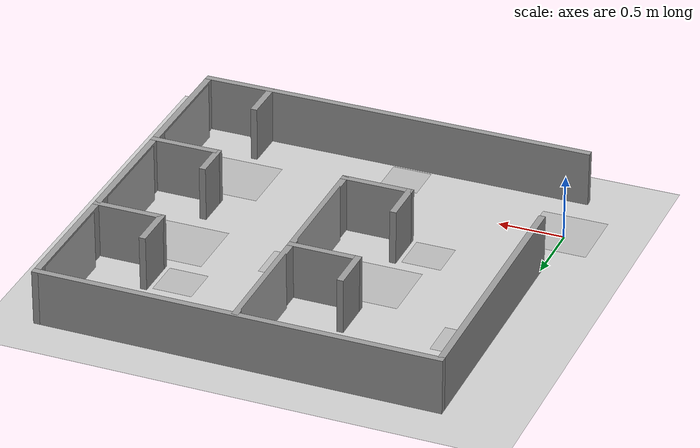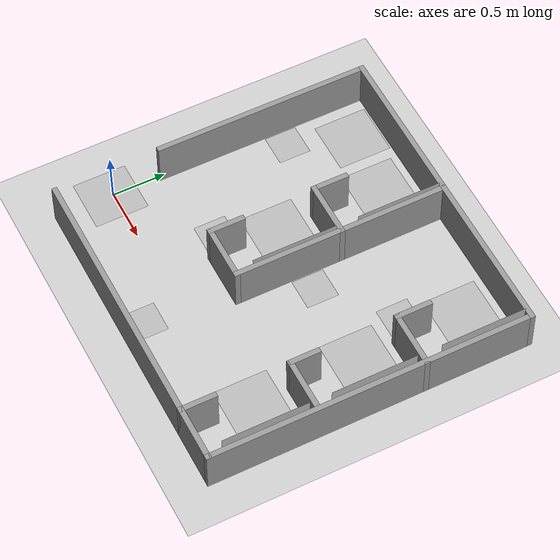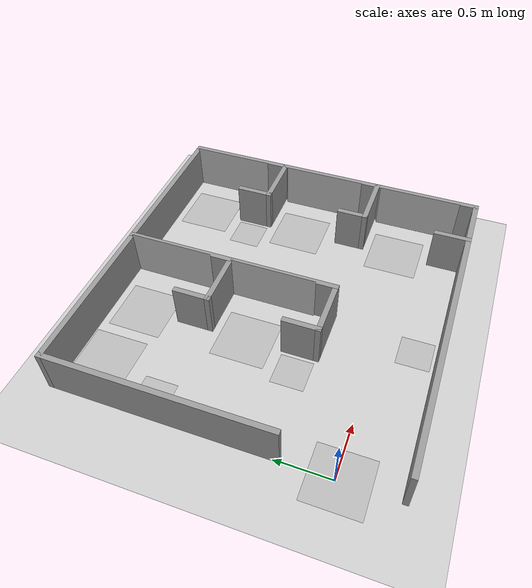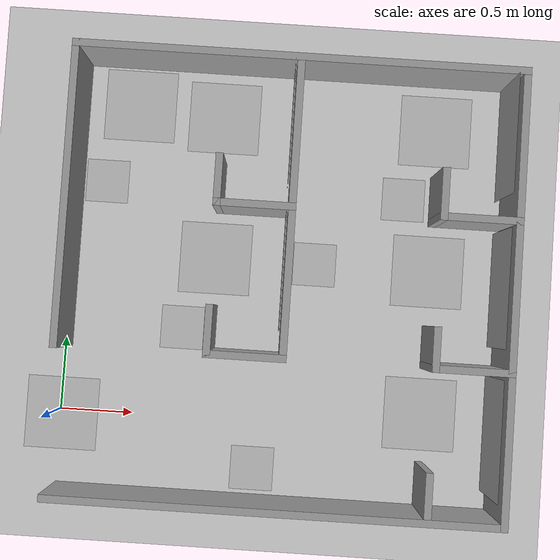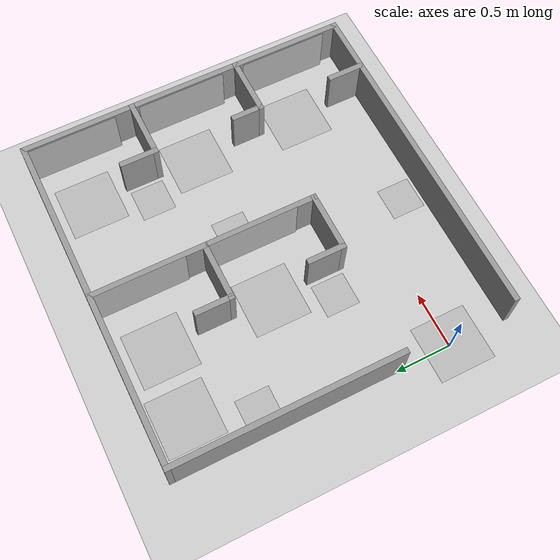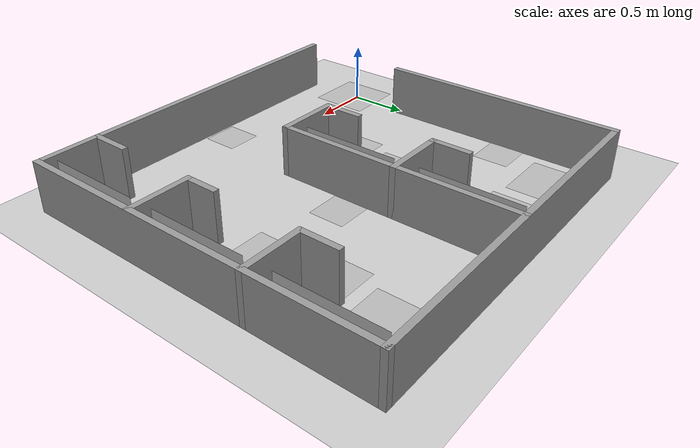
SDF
<sdf version="1.6">
 <world name="default">
  <light name="sun" type="directional">
   <pose>0 0 10 0 -0 0</pose>
   <diffuse>0.8 0.8 0.8 1</diffuse>
   <specular>0.1 0.1 0.1 1</specular>
   <attenuation>
    <range>1000</range>
    <constant>0.9</constant>
    <linear>0.01</linear>
    <quadratic>0.001</quadratic>
   </attenuation>
   <direction>-0.5 0.5 -1</direction>
  </light>
  <model name="ground_plane">
   <static>1</static>
   <link name="link">
    <collision name="collision">
     <geometry><plane><normal>0 0 1</normal><size>100 100</size></plane></geometry>
     <surface><friction><ode><mu>100</mu><mu2>50</mu2></ode></friction></surface>
    </collision>
    <visual name="visual">
     <cast_shadows>0</cast_shadows>
     <geometry><plane><normal>0 0 1</normal><size>100 100</size></plane></geometry>
     <material>
      <script><uri>file://media/materials/scripts/gazebo.material</uri><name>Gazebo/Grey</name></script>
     </material>
    </visual>
   </link>
  </model>
  <gravity>0 0 -9.8</gravity>
  <magnetic_field>6e-06 2.3e-05 -4.2e-05</magnetic_field>
  <atmosphere type="adiabatic"/>
  <physics name="default_physics" default="0" type="ode">
   <max_step_size>0.001</max_step_size>
   <real_time_factor>1</real_time_factor>
   <real_time_update_rate>1000</real_time_update_rate>
  </physics>
  <scene><ambient>0.4 0.4 0.4 1</ambient><background>0.7 0.7 0.7 1</background><shadows>1</shadows></scene>
  <spherical_coordinates>
   <surface_model>EARTH_WGS84</surface_model>
   <latitude_deg>0</latitude_deg>
   <longitude_deg>0</longitude_deg>
   <elevation>0</elevation>
   <heading_deg>0</heading_deg>
  </spherical_coordinates>
  <model name="reinovo_robocom">
   <model name="rei_begin">
    <link name="link_0">
     <visual name="visual">
      <geometry><mesh><uri>model://reinovo_robocom/rei_begin/meshes/begin.dae</uri></mesh></geometry>
     </visual>
     <inertial>
      <inertia><ixx>1</ixx><ixy>0</ixy><ixz>0</ixz><iyy>1</iyy><iyz>0</iyz><izz>1</izz></inertia>
      <mass>1</mass>
     </inertial>
    </link>
    <pose>-1.6 -1.25 0.01 0 -0 0</pose>
   </model>
   <model name="rei_beijing">
    <link name="link_0">
     <visual name="visual">
      <geometry><mesh><uri>model://reinovo_robocom/rei_beijing/meshes/beijing.dae</uri></mesh></geometry>
     </visual>
     <inertial>
      <inertia><ixx>1</ixx><ixy>0</ixy><ixz>0</ixz><iyy>1</iyy><iyz>0</iyz><izz>1</izz></inertia>
      <mass>1</mass>
     </inertial>
    </link>
    <pose>1.35 -1.2 0.2 1.5707 -0 -1.5707</pose>
   </model>
   <model name="rei_charge">
    <link name="link_0">
     <visual name="visual">
      <geometry><mesh><uri>model://reinovo_robocom/rei_charge/meshes/charge.dae</uri></mesh></geometry>
     </visual>
     <inertial>
      <inertia><ixx>1</ixx><ixy>0</ixy><ixz>0</ixz><iyy>1</iyy><iyz>0</iyz><izz>1</izz></inertia>
      <mass>1</mass>
     </inertial>
    </link>
    <pose>-1.2 0.95 0.01 0 -0 0</pose>
   </model>
   <model name="rei_goal">
    <link name="link_0">
     <visual name="visual">
      <geometry><mesh><uri>model://reinovo_robocom/rei_goal/meshes/goal.dae</uri></mesh></geometry>
     </visual>
     <inertial>
      <inertia><ixx>1</ixx><ixy>0</ixy><ixz>0</ixz><iyy>1</iyy><iyz>0</iyz><izz>1</izz></inertia>
      <mass>1</mass>
     </inertial>
    </link>
    <pose>-0.6 0.9 0.005 0 -0 0</pose>
   </model>
   <model name="rei_goal_0">
    <link name="link_0">
     <visual name="visual">
      <geometry><mesh><uri>model://reinovo_robocom/rei_goal/meshes/goal.dae</uri></mesh></geometry>
     </visual>
     <inertial>
      <inertia><ixx>1</ixx><ixy>0</ixy><ixz>0</ixz><iyy>1</iyy><iyz>0</iyz><izz>1</izz></inertia>
      <mass>1</mass>
     </inertial>
    </link>
    <pose>-0.6 -0.1 0.005 0 -0 0</pose>
   </model>
   <model name="rei_goal_1">
    <link name="link_0">
     <visual name="visual">
      <geometry><mesh><uri>model://reinovo_robocom/rei_goal/meshes/goal.dae</uri></mesh></geometry>
     </visual>
     <inertial>
      <inertia><ixx>1</ixx><ixy>0</ixy><ixz>0</ixz><iyy>1</iyy><iyz>0</iyz><izz>1</izz></inertia>
      <mass>1</mass>
     </inertial>
    </link>
    <pose>0.9 -1.1 0.005 0 -0 0</pose>
   </model>
   <model name="rei_goal_2">
    <link name="link_0">
     <visual name="visual">
      <geometry><mesh><uri>model://reinovo_robocom/rei_goal/meshes/goal.dae</uri></mesh></geometry>
     </visual>
     <inertial>
      <inertia><ixx>1</ixx><ixy>0</ixy><ixz>0</ixz><iyy>1</iyy><iyz>0</iyz><izz>1</izz></inertia>
      <mass>1</mass>
     </inertial>
    </link>
    <pose>0.9 -0.1 0.005 0 -0 0</pose>
   </model>
   <model name="rei_goal_3">
    <link name="link_0">
     <visual name="visual">
      <geometry><mesh><uri>model://reinovo_robocom/rei_goal/meshes/goal.dae</uri></mesh></geometry>
     </visual>
     <inertial>
      <inertia><ixx>1</ixx><ixy>0</ixy><ixz>0</ixz><iyy>1</iyy><iyz>0</iyz><izz>1</izz></inertia>
      <mass>1</mass>
     </inertial>
    </link>
    <pose>0.9 0.9 0.005 0 -0 0</pose>
   </model>
   <model name="rei_guangzhou">
    <link name="link_0">
     <visual name="visual">
      <geometry><mesh><uri>model://reinovo_robocom/rei_guangzhou/meshes/guangzhou.dae</uri></mesh></geometry>
     </visual>
     <inertial>
      <inertia><ixx>1</ixx><ixy>0</ixy><ixz>0</ixz><iyy>1</iyy><iyz>0</iyz><izz>1</izz></inertia>
      <mass>1</mass>
     </inertial>
    </link>
    <pose>1.35 -0.2 0.2 1.5707 -0 -1.5707</pose>
   </model>
   <model name="rei_jiling">
    <link name="link_0">
     <visual name="visual">
      <geometry><mesh><uri>model://reinovo_robocom/rei_jiling/meshes/jiling.dae</uri></mesh></geometry>
     </visual>
     <inertial>
      <inertia><ixx>1</ixx><ixy>0</ixy><ixz>0</ixz><iyy>1</iyy><iyz>0</iyz><izz>1</izz></inertia>
      <mass>1</mass>
     </inertial>
    </link>
    <pose>1.35 0.825 0.2 1.5707 -0 -1.5707</pose>
   </model>
   <model name="rei_obs">
    <link name="link_0">
     <visual name="visual">
      <geometry><mesh><uri>model://reinovo_robocom/rei_obs/meshes/obs.dae</uri></mesh></geometry>
     </visual>
     <inertial>
      <inertia><ixx>1</ixx><ixy>0</ixy><ixz>0</ixz><iyy>1</iyy><iyz>0</iyz><izz>1</izz></inertia>
      <mass>1</mass>
     </inertial>
    </link>
    <pose>-0.8 -0.6 0.005 0 -0 0</pose>
   </model>
   <model name="rei_obs_0">
    <link name="link_0">
     <visual name="visual">
      <geometry><mesh><uri>model://reinovo_robocom/rei_obs/meshes/obs.dae</uri></mesh></geometry>
     </visual>
     <inertial>
      <inertia><ixx>1</ixx><ixy>0</ixy><ixz>0</ixz><iyy>1</iyy><iyz>0</iyz><izz>1</izz></inertia>
      <mass>1</mass>
     </inertial>
    </link>
    <pose>-1.4 0.4 0.005 0 -0 0</pose>
   </model>
   <model name="rei_obs_1">
    <link name="link_0">
     <visual name="visual">
      <geometry><mesh><uri>model://reinovo_robocom/rei_obs/meshes/obs.dae</uri></mesh></geometry>
     </visual>
     <inertial>
      <inertia><ixx>1</ixx><ixy>0</ixy><ixz>0</ixz><iyy>1</iyy><iyz>0</iyz><izz>1</izz></inertia>
      <mass>1</mass>
     </inertial>
    </link>
    <pose>-0.25 -1.55 0.005 0 -0 0</pose>
   </model>
   <model name="rei_obs_2">
    <link name="link_0">
     <visual name="visual">
      <geometry><mesh><uri>model://reinovo_robocom/rei_obs/meshes/obs.dae</uri></mesh></geometry>
     </visual>
     <inertial>
      <inertia><ixx>1</ixx><ixy>0</ixy><ixz>0</ixz><iyy>1</iyy><iyz>0</iyz><izz>1</izz></inertia>
      <mass>1</mass>
     </inertial>
    </link>
    <pose>0.7 0.4 0.005 0 -0 0</pose>
   </model>
   <model name="rei_obs_3">
    <link name="link_0">
     <visual name="visual">
      <geometry><mesh><uri>model://reinovo_robocom/rei_obs/meshes/obs.dae</uri></mesh></geometry>
     </visual>
     <inertial>
      <inertia><ixx>1</ixx><ixy>0</ixy><ixz>0</ixz><iyy>1</iyy><iyz>0</iyz><izz>1</izz></inertia>
      <mass>1</mass>
     </inertial>
    </link>
    <pose>0.1 -0.1 0.005 0 -0 0</pose>
   </model>
   <model name="rei_shanghai">
    <link name="link_0">
     <visual name="visual">
      <geometry><mesh><uri>model://reinovo_robocom/rei_shanghai/meshes/shanghai.dae</uri></mesh></geometry>
     </visual>
     <inertial>
      <inertia><ixx>1</ixx><ixy>0</ixy><ixz>0</ixz><iyy>1</iyy><iyz>0</iyz><izz>1</izz></inertia>
      <mass>1</mass>
     </inertial>
    </link>
    <pose>-0.125 0.825 0.2 1.5707 -0 -1.5707</pose>
   </model>
   <model name="rei_shenzhen">
    <link name="link_0">
     <visual name="visual">
      <geometry><mesh><uri>model://reinovo_robocom/rei_shenzhen/meshes/shenzhen.dae</uri></mesh></geometry>
     </visual>
     <inertial>
      <inertia><ixx>1</ixx><ixy>0</ixy><ixz>0</ixz><iyy>1</iyy><iyz>0</iyz><izz>1</izz></inertia>
      <mass>1</mass>
     </inertial>
    </link>
    <pose>-0.125 -0.18 0.2 1.5707 -0 -1.5707</pose>
   </model>
   <model name="reinovo_match">
    <pose>-0.088531 -0.254283 -0.082879 0 -0 0</pose>
    <link name="Wall_0">
     <collision name="Wall_0_Collision">
      <geometry><box><size>3.05 0.05 0.5</size></box></geometry>
      <pose>0 0 0.25 0 -0 0</pose>
     </collision>
     <visual name="Wall_0_Visual">
      <pose>0 0 0.25 0 -0 0</pose>
      <geometry><box><size>3.05 0.05 0.5</size></box></geometry>
      <material>
       <script><uri>file://media/materials/scripts/gazebo.material</uri><name>Gazebo/Grey</name></script>
       <ambient>1 1 1 1</ambient>
      </material>
      <meta><layer>0</layer></meta>
     </visual>
     <pose>0 -1.5 0 0 -0 0</pose>
    </link>
    <link name="Wall_11">
     <collision name="Wall_11_Collision">
      <geometry><box><size>0.3 0.05 0.5</size></box></geometry>
      <pose>0 0 0.25 0 -0 0</pose>
     </collision>
     <visual name="Wall_11_Visual">
      <pose>0 0 0.25 0 -0 0</pose>
      <geometry><box><size>0.3 0.05 0.5</size></box></geometry>
      <material>
       <script><uri>file://media/materials/scripts/gazebo.material</uri><name>Gazebo/Grey</name></script>
       <ambient>1 1 1 1</ambient>
      </material>
      <meta><layer>0</layer></meta>
     </visual>
     <pose>1 -0.375 0 0 -0 1.5708</pose>
    </link>
    <link name="Wall_13">
     <collision name="Wall_13_Collision">
      <geometry><box><size>0.35 0.05 0.5</size></box></geometry>
      <pose>0 0 0.25 0 -0 0</pose>
     </collision>
     <visual name="Wall_13_Visual">
      <pose>0 0 0.25 0 -0 0</pose>
      <geometry><box><size>0.35 0.05 0.5</size></box></geometry>
      <material>
       <script><uri>file://media/materials/scripts/gazebo.material</uri><name>Gazebo/Grey</name></script>
       <ambient>1 1 1 1</ambient>
      </material>
      <meta><layer>0</layer></meta>
     </visual>
     <pose>1 0.65 0 0 -0 1.5708</pose>
    </link>
    <link name="Wall_16">
     <collision name="Wall_16_Collision">
      <geometry><box><size>0.55 0.05 0.5</size></box></geometry>
      <pose>0 0 0.25 0 -0 0</pose>
     </collision>
     <visual name="Wall_16_Visual">
      <pose>0 0 0.25 0 -0 0</pose>
      <geometry><box><size>0.55 0.05 0.5</size></box></geometry>
      <material>
       <script><uri>file://media/materials/scripts/gazebo.material</uri><name>Gazebo/Grey</name></script>
       <ambient>1 1 1 1</ambient>
      </material>
      <meta><layer>0</layer></meta>
     </visual>
     <pose>1.25 0.5 0 0 -0 3.14159</pose>
    </link>
    <link name="Wall_18">
     <collision name="Wall_18_Collision">
      <geometry><box><size>0.55 0.05 0.5</size></box></geometry>
      <pose>0 0 0.25 0 -0 0</pose>
     </collision>
     <visual name="Wall_18_Visual">
      <pose>0 0 0.25 0 -0 0</pose>
      <geometry><box><size>0.55 0.05 0.5</size></box></geometry>
      <material>
       <script><uri>file://media/materials/scripts/gazebo.material</uri><name>Gazebo/Grey</name></script>
       <ambient>1 1 1 1</ambient>
      </material>
      <meta><layer>0</layer></meta>
     </visual>
     <pose>1.25 -0.5 0 0 -0 3.14159</pose>
    </link>
    <link name="Wall_2">
     <collision name="Wall_2_Collision">
      <geometry><box><size>3.05 0.05 0.5</size></box></geometry>
      <pose>0 0 0.25 0 -0 0</pose>
     </collision>
     <visual name="Wall_2_Visual">
      <pose>0 0 0.25 0 -0 0</pose>
      <geometry><box><size>3.05 0.05 0.5</size></box></geometry>
      <material>
       <script><uri>file://media/materials/scripts/gazebo.material</uri><name>Gazebo/Grey</name></script>
       <ambient>1 1 1 1</ambient>
      </material>
      <meta><layer>0</layer></meta>
     </visual>
     <pose>1.5 0 0 0 -0 1.5708</pose>
    </link>
    <link name="Wall_20">
     <collision name="Wall_20_Collision">
      <geometry><box><size>0.55 0.05 0.5</size></box></geometry>
      <pose>0 0 0.25 0 -0 0</pose>
     </collision>
     <visual name="Wall_20_Visual">
      <pose>0 0 0.25 0 -0 0</pose>
      <geometry><box><size>0.55 0.05 0.5</size></box></geometry>
      <material>
       <script><uri>file://media/materials/scripts/gazebo.material</uri><name>Gazebo/Grey</name></script>
       <ambient>1 1 1 1</ambient>
      </material>
      <meta><layer>0</layer></meta>
     </visual>
     <pose>-0.25 0.5 0 0 -0 3.14159</pose>
    </link>
    <link name="Wall_22">
     <collision name="Wall_22_Collision">
      <geometry><box><size>0.55 0.05 0.5</size></box></geometry>
      <pose>0 0 0.25 0 -0 0</pose>
     </collision>
     <visual name="Wall_22_Visual">
      <pose>0 0 0.25 0 -0 0</pose>
      <geometry><box><size>0.55 0.05 0.5</size></box></geometry>
      <material>
       <script><uri>file://media/materials/scripts/gazebo.material</uri><name>Gazebo/Grey</name></script>
       <ambient>1 1 1 1</ambient>
      </material>
      <meta><layer>0</layer></meta>
     </visual>
     <pose>-0.25 -0.5 0 0 -0 3.14159</pose>
    </link>
    <link name="Wall_24">
     <collision name="Wall_24_Collision">
      <geometry><box><size>2.05 0.05 0.5</size></box></geometry>
      <pose>0 0 0.25 0 -0 0</pose>
     </collision>
     <visual name="Wall_24_Visual">
      <pose>0 0 0.25 0 -0 0</pose>
      <geometry><box><size>2.05 0.05 0.5</size></box></geometry>
      <material>
       <script><uri>file://media/materials/scripts/gazebo.material</uri><name>Gazebo/Grey</name></script>
       <ambient>1 1 1 1</ambient>
      </material>
      <meta><layer>0</layer></meta>
     </visual>
     <pose>0 0.5 0 0 -0 -1.5708</pose>
    </link>
    <link name="Wall_26">
     <collision name="Wall_26_Collision">
      <geometry><box><size>0.35 0.05 0.5</size></box></geometry>
      <pose>0 0 0.25 0 -0 0</pose>
     </collision>
     <visual name="Wall_26_Visual">
      <pose>0 0 0.25 0 -0 0</pose>
      <geometry><box><size>0.35 0.05 0.5</size></box></geometry>
      <material>
       <script><uri>file://media/materials/scripts/gazebo.material</uri><name>Gazebo/Grey</name></script>
       <ambient>1 1 1 1</ambient>
      </material>
      <meta><layer>0</layer></meta>
     </visual>
     <pose>-0.5 0.65 0 0 -0 1.5708</pose>
    </link>
    <link name="Wall_28">
     <collision name="Wall_28_Collision">
      <geometry><box><size>0.35 0.05 0.5</size></box></geometry>
      <pose>0 0 0.25 0 -0 0</pose>
     </collision>
     <visual name="Wall_28_Visual">
      <pose>0 0 0.25 0 -0 0</pose>
      <geometry><box><size>0.35 0.05 0.5</size></box></geometry>
      <material>
       <script><uri>file://media/materials/scripts/gazebo.material</uri><name>Gazebo/Grey</name></script>
       <ambient>1 1 1 1</ambient>
      </material>
      <meta><layer>0</layer></meta>
     </visual>
     <pose>-0.5 -0.35 0 0 -0 1.5708</pose>
    </link>
    <link name="Wall_4">
     <collision name="Wall_4_Collision">
      <geometry><box><size>3.05 0.05 0.5</size></box></geometry>
      <pose>0 0 0.25 0 -0 0</pose>
     </collision>
     <visual name="Wall_4_Visual">
      <pose>0 0 0.25 0 -0 0</pose>
      <geometry><box><size>3.05 0.05 0.5</size></box></geometry>
      <material>
       <script><uri>file://media/materials/scripts/gazebo.material</uri><name>Gazebo/Grey</name></script>
       <ambient>1 1 1 1</ambient>
      </material>
      <meta><layer>0</layer></meta>
     </visual>
     <pose>0 1.5 0 0 -0 3.14159</pose>
    </link>
    <link name="Wall_6">
     <collision name="Wall_6_Collision">
      <geometry><box><size>2.05 0.05 0.5</size></box></geometry>
      <pose>0 0 0.25 0 -0 0</pose>
     </collision>
     <visual name="Wall_6_Visual">
      <pose>0 0 0.25 0 -0 0</pose>
      <geometry><box><size>2.05 0.05 0.5</size></box></geometry>
      <material>
       <script><uri>file://media/materials/scripts/gazebo.material</uri><name>Gazebo/Grey</name></script>
       <ambient>1 1 1 1</ambient>
      </material>
      <meta><layer>0</layer></meta>
     </visual>
     <pose>-1.5 0.5 0 0 -0 -1.5708</pose>
    </link>
    <link name="Wall_8">
     <collision name="Wall_8_Collision">
      <geometry><box><size>0.35 0.05 0.5</size></box></geometry>
      <pose>0 0 0.25 0 -0 0</pose>
     </collision>
     <visual name="Wall_8_Visual">
      <pose>0 0 0.25 0 -0 0</pose>
      <geometry><box><size>0.35 0.05 0.5</size></box></geometry>
      <material>
       <script><uri>file://media/materials/scripts/gazebo.material</uri><name>Gazebo/Grey</name></script>
       <ambient>1 1 1 1</ambient>
      </material>
      <meta><layer>0</layer></meta>
     </visual>
     <pose>1 -1.35 0 0 -0 1.5708</pose>
    </link>
    <static>1</static>
   </model>
   <joint name="Wall_0_JOINT_9" type="fixed">
    <parent>reinovo_match::Wall_0</parent>
    <child>rei_obs_1::link_0</child>
    <physics>
     <ode><limit><cfm>0</cfm><erp>0.2</erp></limit><suspension><cfm>0</cfm><erp>0.2</erp></suspension></ode>
    </physics>
   </joint>
   <joint name="Wall_11_JOINT_14" type="fixed">
    <parent>reinovo_match::Wall_11</parent>
    <child>rei_goal_2::link_0</child>
    <physics>
     <ode><limit><cfm>0</cfm><erp>0.2</erp></limit><suspension><cfm>0</cfm><erp>0.2</erp></suspension></ode>
    </physics>
   </joint>
   <joint name="Wall_13_JOINT_15" type="fixed">
    <parent>reinovo_match::Wall_13</parent>
    <child>rei_goal_3::link_0</child>
    <physics>
     <ode><limit><cfm>0</cfm><erp>0.2</erp></limit><suspension><cfm>0</cfm><erp>0.2</erp></suspension></ode>
    </physics>
   </joint>
   <joint name="Wall_13_JOINT_16" type="fixed">
    <parent>reinovo_match::Wall_13</parent>
    <child>rei_obs_2::link_0</child>
    <physics>
     <ode><limit><cfm>0</cfm><erp>0.2</erp></limit><suspension><cfm>0</cfm><erp>0.2</erp></suspension></ode>
    </physics>
   </joint>
   <joint name="Wall_24_JOINT_17" type="fixed">
    <parent>reinovo_match::Wall_24</parent>
    <child>rei_obs_3::link_0</child>
    <physics>
     <ode><limit><cfm>0</cfm><erp>0.2</erp></limit><suspension><cfm>0</cfm><erp>0.2</erp></suspension></ode>
    </physics>
   </joint>
   <joint name="Wall_24_JOINT_2" type="fixed">
    <parent>reinovo_match::Wall_24</parent>
    <child>rei_shanghai::link_0</child>
    <physics>
     <ode><limit><cfm>0</cfm><erp>0.2</erp></limit><suspension><cfm>0</cfm><erp>0.2</erp></suspension></ode>
    </physics>
   </joint>
   <joint name="Wall_24_JOINT_5" type="fixed">
    <parent>reinovo_match::Wall_24</parent>
    <child>rei_shenzhen::link_0</child>
    <physics>
     <ode><limit><cfm>0</cfm><erp>0.2</erp></limit><suspension><cfm>0</cfm><erp>0.2</erp></suspension></ode>
    </physics>
   </joint>
   <joint name="Wall_26_JOINT_4" type="fixed">
    <parent>reinovo_match::Wall_26</parent>
    <child>rei_goal::link_0</child>
    <physics>
     <ode><limit><cfm>0</cfm><erp>0.2</erp></limit><suspension><cfm>0</cfm><erp>0.2</erp></suspension></ode>
    </physics>
   </joint>
   <joint name="Wall_28_JOINT_6" type="fixed">
    <parent>reinovo_match::Wall_28</parent>
    <child>rei_goal_0::link_0</child>
    <physics>
     <ode><limit><cfm>0</cfm><erp>0.2</erp></limit><suspension><cfm>0</cfm><erp>0.2</erp></suspension></ode>
    </physics>
   </joint>
   <joint name="Wall_28_JOINT_7" type="fixed">
    <parent>reinovo_match::Wall_28</parent>
    <child>rei_obs::link_0</child>
    <physics>
     <ode><limit><cfm>0</cfm><erp>0.2</erp></limit><suspension><cfm>0</cfm><erp>0.2</erp></suspension></ode>
    </physics>
   </joint>
   <joint name="Wall_2_JOINT_10" type="fixed">
    <parent>reinovo_match::Wall_2</parent>
    <child>rei_beijing::link_0</child>
    <physics>
     <ode><limit><cfm>0</cfm><erp>0.2</erp></limit><suspension><cfm>0</cfm><erp>0.2</erp></suspension></ode>
    </physics>
   </joint>
   <joint name="Wall_2_JOINT_11" type="fixed">
    <parent>reinovo_match::Wall_2</parent>
    <child>rei_guangzhou::link_0</child>
    <physics>
     <ode><limit><cfm>0</cfm><erp>0.2</erp></limit><suspension><cfm>0</cfm><erp>0.2</erp></suspension></ode>
    </physics>
   </joint>
   <joint name="Wall_2_JOINT_12" type="fixed">
    <parent>reinovo_match::Wall_2</parent>
    <child>rei_jiling::link_0</child>
    <physics>
     <ode><limit><cfm>0</cfm><erp>0.2</erp></limit><suspension><cfm>0</cfm><erp>0.2</erp></suspension></ode>
    </physics>
   </joint>
   <joint name="Wall_6_JOINT_0" type="fixed">
    <parent>reinovo_match::Wall_6</parent>
    <child>rei_begin::link_0</child>
    <physics>
     <ode><limit><cfm>0</cfm><erp>0.2</erp></limit><suspension><cfm>0</cfm><erp>0.2</erp></suspension></ode>
    </physics>
   </joint>
   <joint name="Wall_6_JOINT_8" type="fixed">
    <parent>reinovo_match::Wall_6</parent>
    <child>rei_obs_0::link_0</child>
    <physics>
     <ode><limit><cfm>0</cfm><erp>0.2</erp></limit><suspension><cfm>0</cfm><erp>0.2</erp></suspension></ode>
    </physics>
   </joint>
   <joint name="Wall_8_JOINT_13" type="fixed">
    <parent>reinovo_match::Wall_8</parent>
    <child>rei_goal_1::link_0</child>
    <physics>
     <ode><limit><cfm>0</cfm><erp>0.2</erp></limit><suspension><cfm>0</cfm><erp>0.2</erp></suspension></ode>
    </physics>
   </joint>
   <static>0</static>
   <pose>1.6077 1.22044 0 0 -0 0</pose>
  </model>
 </world>
</sdf>
